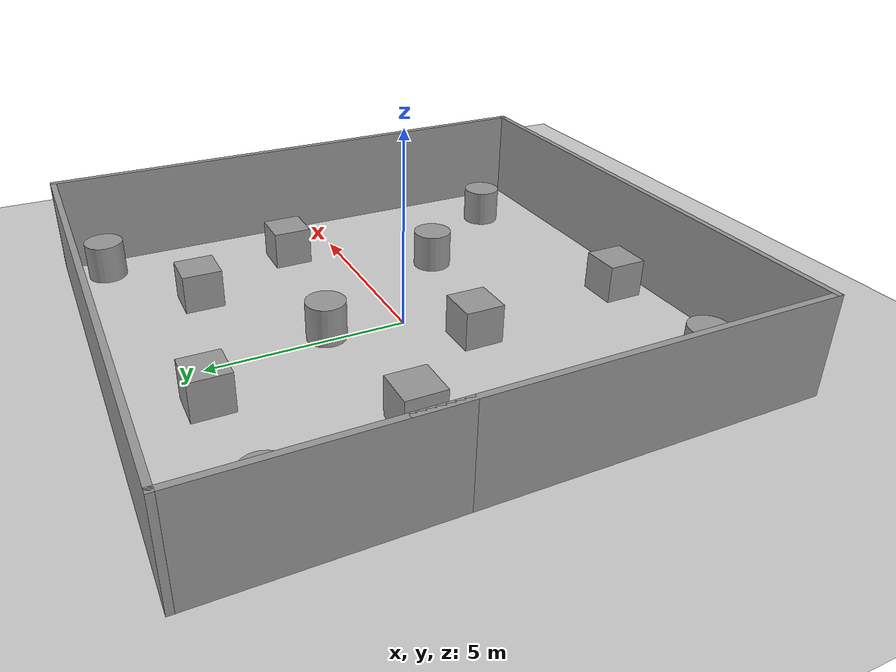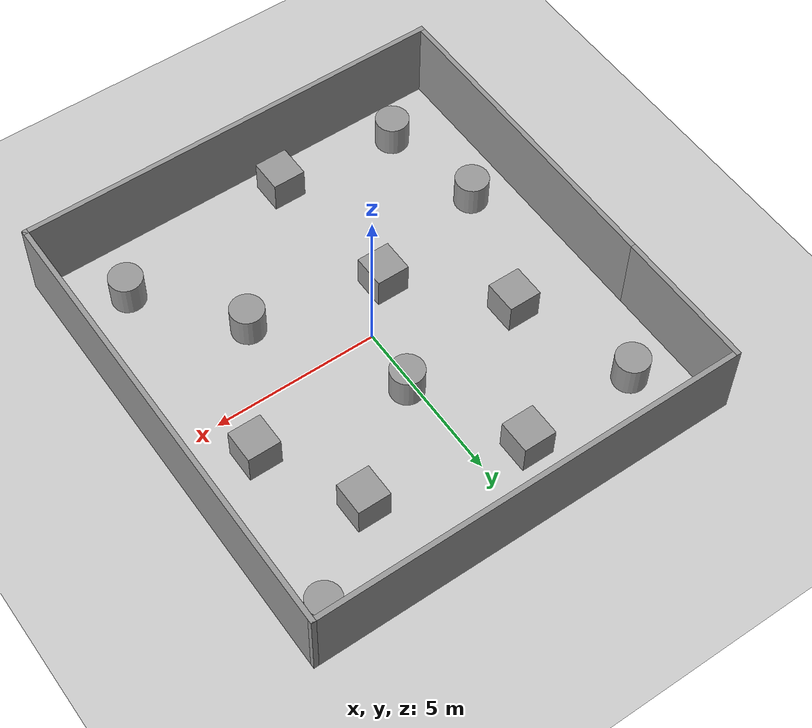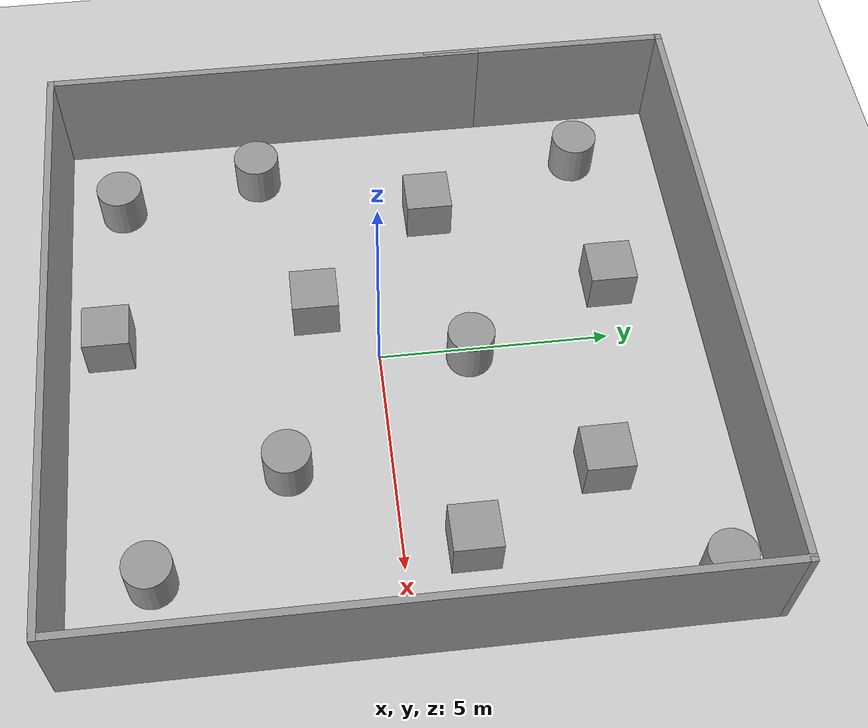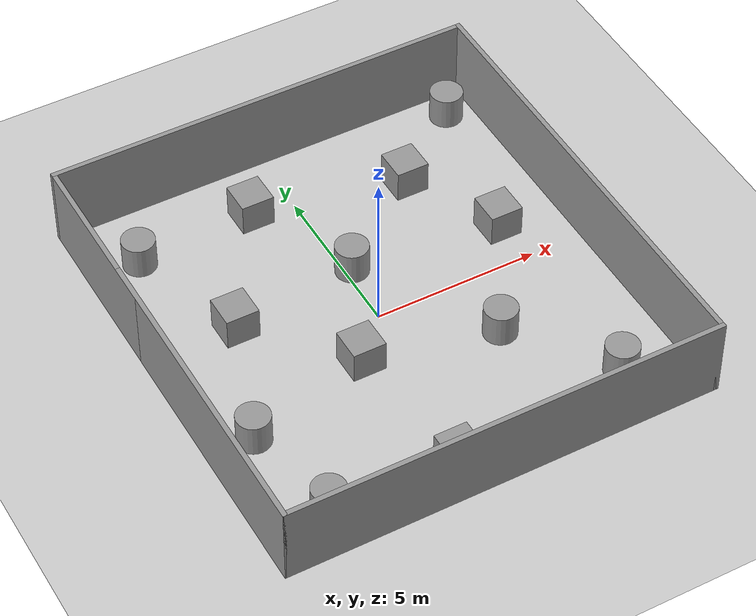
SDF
<sdf version="1.7">
 <world name="default">
  <light name="sun" type="directional">
   <pose>0 0 10 0 -0 0</pose>
   <diffuse>0.8 0.8 0.8 1</diffuse>
   <specular>0.2 0.2 0.2 1</specular>
   <attenuation>
    <range>1000</range>
    <constant>0.9</constant>
    <linear>0.01</linear>
    <quadratic>0.001</quadratic>
   </attenuation>
   <direction>-0.5 0.1 -0.9</direction>
   <spot><inner_angle>0</inner_angle><outer_angle>0</outer_angle><falloff>0</falloff></spot>
  </light>
  <model name="ground_plane">
   <static>1</static>
   <link name="link">
    <collision name="collision">
     <geometry><plane><normal>0 0 1</normal><size>100 100</size></plane></geometry>
     <surface>
      <contact><collide_bitmask>65535</collide_bitmask></contact>
      <friction><ode><mu>100</mu><mu2>50</mu2></ode></friction>
     </surface>
    </collision>
    <visual name="visual">
     <cast_shadows>0</cast_shadows>
     <geometry><plane><normal>0 0 1</normal><size>100 100</size></plane></geometry>
     <material>
      <script><uri>file://media/materials/scripts/gazebo.material</uri><name>Gazebo/Grey</name></script>
     </material>
    </visual>
   </link>
  </model>
  <gravity>0 0 -9.8</gravity>
  <magnetic_field>6e-06 2.3e-05 -4.2e-05</magnetic_field>
  <atmosphere type="adiabatic"/>
  <physics type="ode">
   <max_step_size>0.001</max_step_size>
   <real_time_factor>1</real_time_factor>
   <real_time_update_rate>1000</real_time_update_rate>
  </physics>
  <scene><ambient>0.4 0.4 0.4 1</ambient><background>0.7 0.7 0.7 1</background><shadows>1</shadows></scene>
  <spherical_coordinates>
   <surface_model>EARTH_WGS84</surface_model>
   <latitude_deg>0</latitude_deg>
   <longitude_deg>0</longitude_deg>
   <elevation>0</elevation>
   <heading_deg>0</heading_deg>
  </spherical_coordinates>
  <model name="multi14x14">
   <pose>0.123047 0.20185 0 0 -0 0</pose>
   <link name="Wall_10">
    <collision name="Wall_10_Collision">
     <geometry><box><size>13.25 0.15 2.5</size></box></geometry>
     <pose>0 0 1.25 0 -0 0</pose>
    </collision>
    <visual name="Wall_10_Visual">
     <pose>0 0 1.25 0 -0 0</pose>
     <geometry><box><size>13.25 0.15 2.5</size></box></geometry>
     <material>
      <script><uri>file://media/materials/scripts/gazebo.material</uri><name>Gazebo/Grey</name></script>
      <ambient>1 1 1 1</ambient>
     </material>
     <meta><layer>0</layer></meta>
    </visual>
    <pose>-0 -6.925 0 0 -0 0</pose>
   </link>
   <link name="Wall_11">
    <collision name="Wall_11_Collision">
     <geometry><box><size>14 0.15 2.5</size></box></geometry>
     <pose>0 0 1.25 0 -0 0</pose>
    </collision>
    <visual name="Wall_11_Visual">
     <pose>0 0 1.25 0 -0 0</pose>
     <geometry><box><size>14 0.15 2.5</size></box></geometry>
     <material>
      <script><uri>file://media/materials/scripts/gazebo.material</uri><name>Gazebo/Grey</name></script>
      <ambient>1 1 1 1</ambient>
     </material>
     <meta><layer>0</layer></meta>
    </visual>
    <pose>6.55 0 0 0 -0 1.5708</pose>
   </link>
   <link name="Wall_12">
    <collision name="Wall_12_Collision">
     <geometry><box><size>13.25 0.15 2.5</size></box></geometry>
     <pose>0 0 1.25 0 -0 0</pose>
    </collision>
    <visual name="Wall_12_Visual">
     <pose>0 0 1.25 0 -0 0</pose>
     <geometry><box><size>13.25 0.15 2.5</size></box></geometry>
     <material>
      <script><uri>file://media/materials/scripts/gazebo.material</uri><name>Gazebo/Grey</name></script>
      <ambient>1 1 1 1</ambient>
     </material>
     <meta><layer>0</layer></meta>
    </visual>
    <pose>-0 6.925 0 0 -0 3.14159</pose>
   </link>
   <link name="Wall_13">
    <collision name="Wall_13_Collision">
     <geometry><box><size>5.5 0.15 2.5</size></box></geometry>
     <pose>0 0 1.25 0 -0 0</pose>
    </collision>
    <visual name="Wall_13_Visual">
     <pose>0 0 1.25 0 -0 0</pose>
     <geometry><box><size>5.5 0.15 2.5</size></box></geometry>
     <material>
      <script><uri>file://media/materials/scripts/gazebo.material</uri><name>Gazebo/Grey</name></script>
      <ambient>1 1 1 1</ambient>
     </material>
     <meta><layer>0</layer></meta>
    </visual>
    <pose>-6.55 4.25 0 0 -0 -1.5708</pose>
   </link>
   <link name="Wall_9">
    <collision name="Wall_9_Collision">
     <geometry><box><size>9.75 0.15 2.5</size></box></geometry>
     <pose>0 0 1.25 0 -0 0</pose>
    </collision>
    <visual name="Wall_9_Visual">
     <pose>0 0 1.25 0 -0 0</pose>
     <geometry><box><size>9.75 0.15 2.5</size></box></geometry>
     <material>
      <script><uri>file://media/materials/scripts/gazebo.material</uri><name>Gazebo/Grey</name></script>
      <ambient>1 1 1 1</ambient>
     </material>
     <meta><layer>0</layer></meta>
    </visual>
    <pose>-6.55 -2.125 0 0 -0 -1.5708</pose>
   </link>
   <static>1</static>
  </model>
  <model name="unit_cylinder">
   <pose>-4.92026 5.05955 0.499992 -3e-06 2e-06 0</pose>
   <link name="link">
    <inertial>
     <mass>1</mass>
     <inertia><ixx>0.145833</ixx><ixy>0</ixy><ixz>0</ixz><iyy>0.145833</iyy><iyz>0</iyz><izz>0.125</izz></inertia>
    </inertial>
    <collision name="collision">
     <geometry><cylinder><radius>0.5</radius><length>1</length></cylinder></geometry>
    </collision>
    <visual name="visual">
     <geometry><cylinder><radius>0.5</radius><length>1</length></cylinder></geometry>
     <material>
      <script><name>Gazebo/Grey</name><uri>file://media/materials/scripts/gazebo.material</uri></script>
     </material>
    </visual>
   </link>
  </model>
  <model name="unit_box">
   <pose>-3.69527 1.47704 0.499995 0 1e-05 0</pose>
   <link name="link">
    <inertial>
     <mass>1</mass>
     <inertia>
      <ixx>0.166667</ixx>
      <ixy>0</ixy>
      <ixz>0</ixz>
      <iyy>0.166667</iyy>
      <iyz>0</iyz>
      <izz>0.166667</izz>
     </inertia>
    </inertial>
    <collision name="collision"><geometry><box><size>1 1 1</size></box></geometry></collision>
    <visual name="visual">
     <geometry><box><size>1 1 1</size></box></geometry>
     <material>
      <script><name>Gazebo/Grey</name><uri>file://media/materials/scripts/gazebo.material</uri></script>
     </material>
    </visual>
   </link>
  </model>
  <model name="unit_box_0">
   <pose>-1.3057 5.21242 0.499995 1e-05 -0 0</pose>
   <link name="link">
    <inertial>
     <mass>1</mass>
     <inertia>
      <ixx>0.166667</ixx>
      <ixy>0</ixy>
      <ixz>0</ixz>
      <iyy>0.166667</iyy>
      <iyz>0</iyz>
      <izz>0.166667</izz>
     </inertia>
    </inertial>
    <collision name="collision"><geometry><box><size>1 1 1</size></box></geometry></collision>
    <visual name="visual">
     <geometry><box><size>1 1 1</size></box></geometry>
     <material>
      <script><name>Gazebo/Grey</name><uri>file://media/materials/scripts/gazebo.material</uri></script>
     </material>
    </visual>
   </link>
  </model>
  <model name="unit_cylinder_0">
   <pose>4.80842 -4.93923 0.499996 3e-06 3e-06 0</pose>
   <link name="link">
    <inertial>
     <mass>1</mass>
     <inertia><ixx>0.145833</ixx><ixy>0</ixy><ixz>0</ixz><iyy>0.145833</iyy><iyz>0</iyz><izz>0.125</izz></inertia>
    </inertial>
    <collision name="collision">
     <geometry><cylinder><radius>0.5</radius><length>1</length></cylinder></geometry>
    </collision>
    <visual name="visual">
     <geometry><cylinder><radius>0.5</radius><length>1</length></cylinder></geometry>
     <material>
      <script><name>Gazebo/Grey</name><uri>file://media/materials/scripts/gazebo.material</uri></script>
     </material>
    </visual>
   </link>
  </model>
  <model name="unit_cylinder_1">
   <pose>0.218386 1.9365 0.499992 -3e-06 2e-06 0</pose>
   <link name="link">
    <inertial>
     <mass>1</mass>
     <inertia><ixx>0.145833</ixx><ixy>0</ixy><ixz>0</ixz><iyy>0.145833</iyy><iyz>0</iyz><izz>0.125</izz></inertia>
    </inertial>
    <collision name="collision">
     <geometry><cylinder><radius>0.5</radius><length>1</length></cylinder></geometry>
    </collision>
    <visual name="visual">
     <geometry><cylinder><radius>0.5</radius><length>1</length></cylinder></geometry>
     <material>
      <script><name>Gazebo/Grey</name><uri>file://media/materials/scripts/gazebo.material</uri></script>
     </material>
    </visual>
   </link>
  </model>
  <model name="unit_box_1">
   <pose>4.67858 1.39095 0.499995 1e-05 -0 0</pose>
   <link name="link">
    <inertial>
     <mass>1</mass>
     <inertia>
      <ixx>0.166667</ixx>
      <ixy>0</ixy>
      <ixz>0</ixz>
      <iyy>0.166667</iyy>
      <iyz>0</iyz>
      <izz>0.166667</izz>
     </inertia>
    </inertial>
    <collision name="collision"><geometry><box><size>1 1 1</size></box></geometry></collision>
    <visual name="visual">
     <geometry><box><size>1 1 1</size></box></geometry>
     <material>
      <script><name>Gazebo/Grey</name><uri>file://media/materials/scripts/gazebo.material</uri></script>
     </material>
    </visual>
   </link>
  </model>
  <model name="unit_cylinder_3">
   <pose>2.65234 -2.13971 0.499998 3e-06 -2e-06 0</pose>
   <link name="link">
    <inertial>
     <mass>1</mass>
     <inertia><ixx>0.145833</ixx><ixy>0</ixy><ixz>0</ixz><iyy>0.145833</iyy><iyz>0</iyz><izz>0.125</izz></inertia>
    </inertial>
    <collision name="collision">
     <geometry><cylinder><radius>0.5</radius><length>1</length></cylinder></geometry>
    </collision>
    <visual name="visual">
     <geometry><cylinder><radius>0.5</radius><length>1</length></cylinder></geometry>
     <material>
      <script><name>Gazebo/Grey</name><uri>file://media/materials/scripts/gazebo.material</uri></script>
     </material>
    </visual>
   </link>
  </model>
  <model name="unit_box_2">
   <pose>-1.25432 -1.28197 0.499995 1e-05 -0 0</pose>
   <link name="link">
    <inertial>
     <mass>1</mass>
     <inertia>
      <ixx>0.166667</ixx>
      <ixy>0</ixy>
      <ixz>0</ixz>
      <iyy>0.166667</iyy>
      <iyz>0</iyz>
      <izz>0.166667</izz>
     </inertia>
    </inertial>
    <collision name="collision"><geometry><box><size>1 1 1</size></box></geometry></collision>
    <visual name="visual">
     <geometry><box><size>1 1 1</size></box></geometry>
     <material>
      <script><name>Gazebo/Grey</name><uri>file://media/materials/scripts/gazebo.material</uri></script>
     </material>
    </visual>
   </link>
  </model>
  <model name="unit_box_3">
   <pose>-0.769107 -5.73513 0.499995 0 1e-05 0</pose>
   <link name="link">
    <inertial>
     <mass>1</mass>
     <inertia>
      <ixx>0.166667</ixx>
      <ixy>0</ixy>
      <ixz>0</ixz>
      <iyy>0.166667</iyy>
      <iyz>0</iyz>
      <izz>0.166667</izz>
     </inertia>
    </inertial>
    <collision name="collision"><geometry><box><size>1 1 1</size></box></geometry></collision>
    <visual name="visual">
     <geometry><box><size>1 1 1</size></box></geometry>
     <material>
      <script><name>Gazebo/Grey</name><uri>file://media/materials/scripts/gazebo.material</uri></script>
     </material>
    </visual>
   </link>
  </model>
  <model name="unit_cylinder_4">
   <pose>-5.0761 -2.3106 0.499998 3e-06 -4e-06 0</pose>
   <link name="link">
    <inertial>
     <mass>1</mass>
     <inertia><ixx>0.145833</ixx><ixy>0</ixy><ixz>0</ixz><iyy>0.145833</iyy><iyz>0</iyz><izz>0.125</izz></inertia>
    </inertial>
    <collision name="collision">
     <geometry><cylinder><radius>0.5</radius><length>1</length></cylinder></geometry>
    </collision>
    <visual name="visual">
     <geometry><cylinder><radius>0.5</radius><length>1</length></cylinder></geometry>
     <material>
      <script><name>Gazebo/Grey</name><uri>file://media/materials/scripts/gazebo.material</uri></script>
     </material>
    </visual>
   </link>
  </model>
  <model name="unit_box_4">
   <pose>3.23347 4.25664 0.499995 -1e-05 -0 -0</pose>
   <link name="link">
    <inertial>
     <mass>1</mass>
     <inertia>
      <ixx>0.166667</ixx>
      <ixy>0</ixy>
      <ixz>0</ixz>
      <iyy>0.166667</iyy>
      <iyz>0</iyz>
      <izz>0.166667</izz>
     </inertia>
    </inertial>
    <collision name="collision"><geometry><box><size>1 1 1</size></box></geometry></collision>
    <visual name="visual">
     <geometry><box><size>1 1 1</size></box></geometry>
     <material>
      <script><name>Gazebo/Grey</name><uri>file://media/materials/scripts/gazebo.material</uri></script>
     </material>
    </visual>
   </link>
  </model>
  <model name="unit_cylinder_2">
   <pose>-4.4952 -5.44014 0.499993 -3e-06 -4e-06 -0</pose>
   <link name="link">
    <inertial>
     <mass>1</mass>
     <inertia><ixx>0.145833</ixx><ixy>0</ixy><ixz>0</ixz><iyy>0.145833</iyy><iyz>0</iyz><izz>0.125</izz></inertia>
    </inertial>
    <collision name="collision">
     <geometry><cylinder><radius>0.5</radius><length>1</length></cylinder></geometry>
    </collision>
    <visual name="visual">
     <geometry><cylinder><radius>0.5</radius><length>1</length></cylinder></geometry>
     <material>
      <script><name>Gazebo/Grey</name><uri>file://media/materials/scripts/gazebo.material</uri></script>
     </material>
    </visual>
   </link>
  </model>
  <model name="unit_cylinder_5">
   <pose>5.75798 6.20005 0.499997 3e-06 4e-06 -0</pose>
   <link name="link">
    <inertial>
     <mass>1</mass>
     <inertia><ixx>0.145833</ixx><ixy>0</ixy><ixz>0</ixz><iyy>0.145833</iyy><iyz>0</iyz><izz>0.125</izz></inertia>
    </inertial>
    <collision name="collision">
     <geometry><cylinder><radius>0.5</radius><length>1</length></cylinder></geometry>
    </collision>
    <visual name="visual">
     <geometry><cylinder><radius>0.5</radius><length>1</length></cylinder></geometry>
     <material>
      <script><name>Gazebo/Grey</name><uri>file://media/materials/scripts/gazebo.material</uri></script>
     </material>
    </visual>
   </link>
  </model>
 </world>
</sdf>
